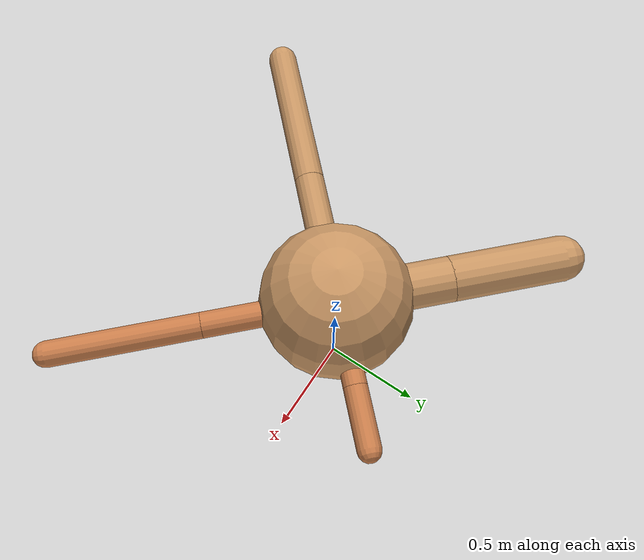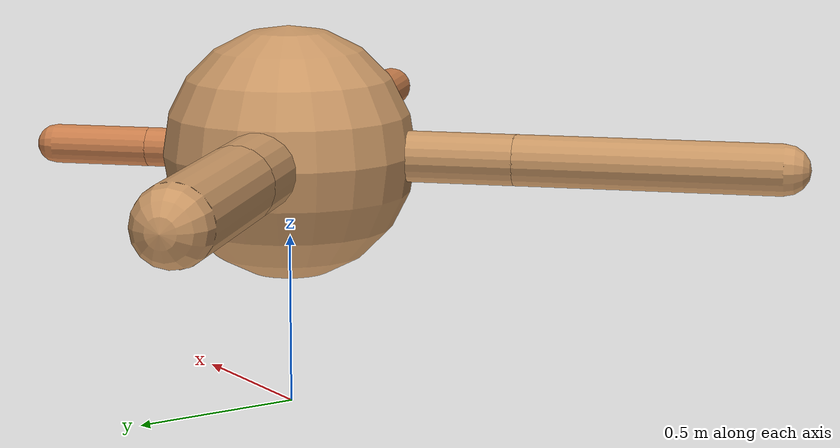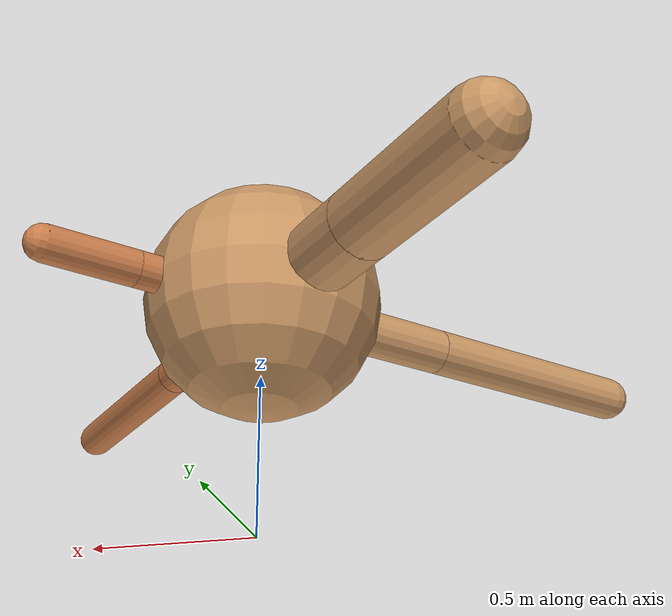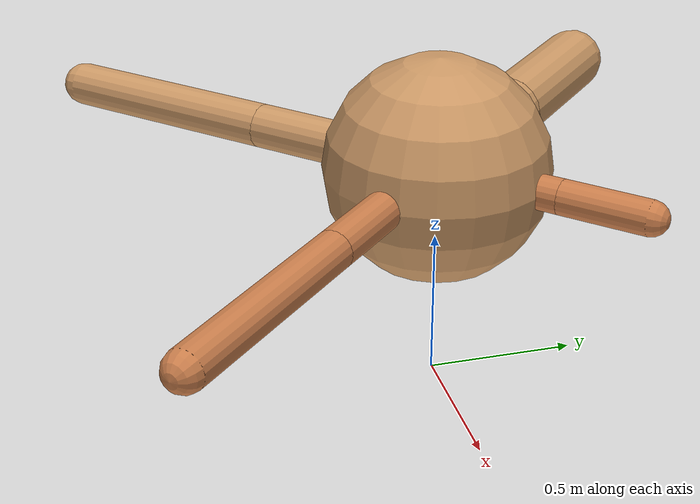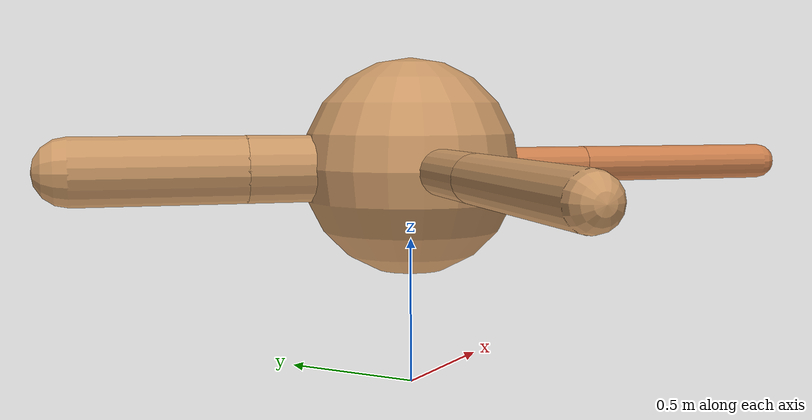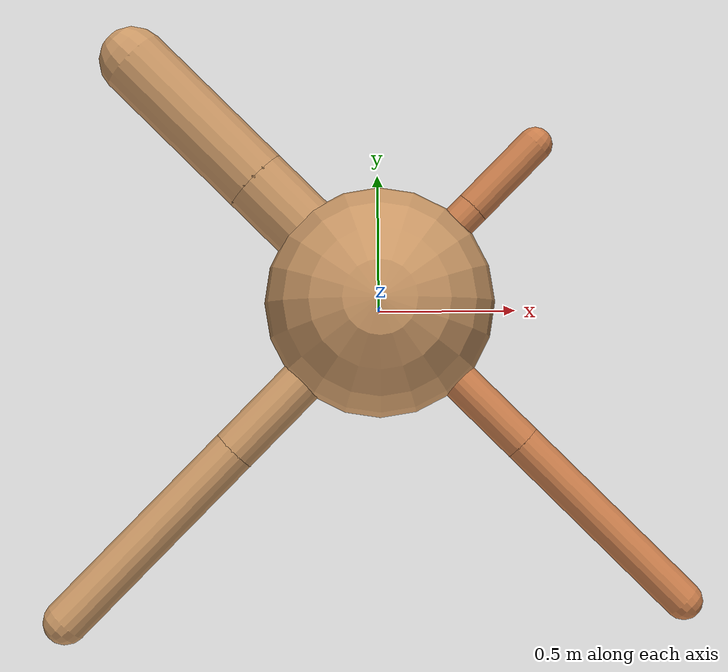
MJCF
<?xml version="1.0" ?>
<mujoco model="ant">

	<compiler angle="degree" coordinate="local" inertiafromgeom="true"/>

	<option integrator="RK4" timestep="0.01"/>

	<custom>

		<numeric data="0.0 0.0 0.55 1.0 0.0 0.0 0.0 0.0 1.0 0.0 -1.0 0.0 -1.0 0.0 1.0" name="init_qpos"/>

	</custom>

	<default>

		<joint armature="1" damping="1" limited="true"/>

		<geom conaffinity="0" condim="3" density="5.0" friction="1.5 0.1 0.1" margin="0.01" rgba="0.8 0.6 0.4 1"/>

	</default>

	<worldbody>

		<body name="torso" pos="0 0 0.75">

			<geom name="torso_geom" pos="0 0 0" size="0.37040242289374153" type="sphere"/>

			<!--joint armature="0" damping="0" limited="false" margin="0.01" name="root" pos="0 0 0" type="free"/-->

			<body name="front_left_leg" pos="0 0 0">

				<geom fromto="0 0 0 0.2 0.2 0" name="aux_1_geom" size="0.0569359641963525" type="capsule" rgba=".8 .5 .3 1"/>

				<body name="aux_1" pos="0.2 0.2 0">

					<joint axis="0 0 1" name="hip_1" pos="0.0 0.0 0.0" range="-40 40" type="hinge"/>

					<geom fromto="0 0 0 0.10152036955532658 0.10152036955532658 0" name="left_leg_geom" size="0.0569359641963525" type="capsule" rgba=".8 .5 .3 1"/>

					<body pos="0.10152036955532658 0.10152036955532658 0" name="front_left_foot">

						<joint axis="-1 1 0" name="ankle_1" pos="0.0 0.0 0.0" range="30 100" type="hinge"/>

						<geom fromto="0 0 0 0.20304073911065315 0.20304073911065315 0" name="left_ankle_geom" size="0.0569359641963525" type="capsule" rgba=".8 .5 .3 1"/>

					</body>

				</body>

			</body>

			<body name="front_right_leg" pos="0 0 0">

				<geom fromto="0 0 0 -0.2 0.2 0" name="aux_2_geom" size="0.11213543870527326" type="capsule"/>

				<body name="aux_2" pos="-0.2 0.2 0">

					<joint axis="0 0 1" name="hip_2" pos="0.0 0.0 0.0" range="-40 40" type="hinge"/>

					<geom fromto="0 0 0 -0.19541429426681564 0.19541429426681564 0" name="right_leg_geom" size="0.11213543870527326" type="capsule"/>

					<body pos="-0.19541429426681564 0.19541429426681564 0" name="front_right_foot">

						<joint axis="1 1 0" name="ankle_2" pos="0.0 0.0 0.0" range="-100 -30" type="hinge"/>

						<geom fromto="0 0 0 -0.3908285885336313 0.3908285885336313 0" name="right_ankle_geom" size="0.11213543870527326" type="capsule"/>

					</body>

				</body>

			</body>

			<body name="left_back_leg" pos="0 0 0">

				<geom fromto="0 0 0 -0.2 -0.2 0" name="aux_3_geom" size="0.07399525841851341" type="capsule"/>

				<body name="aux_3" pos="-0.2 -0.2 0">

					<joint axis="0 0 1" name="hip_3" pos="0.0 0.0 0.0" range="-40 40" type="hinge"/>

					<geom fromto="0 0 0 -0.27094881179246766 -0.27094881179246766 0" name="back_leg_geom" size="0.07399525841851341" type="capsule"/>

					<body pos="-0.27094881179246766 -0.27094881179246766 0" name="left_back_foot">

						<joint axis="-1 1 0" name="ankle_3" pos="0.0 0.0 0.0" range="-100 -30" type="hinge"/>

						<geom fromto="0 0 0 -0.5418976235849353 -0.5418976235849353 0" name="third_ankle_geom" size="0.07399525841851341" type="capsule"/>

					</body>

				</body>

			</body>

			<body name="right_back_leg" pos="0 0 0">

				<geom fromto="0 0 0 0.2 -0.2 0" name="aux_4_geom" size="0.06272807866202934" type="capsule" rgba=".8 .5 .3 1"/>

				<body name="aux_4" pos="0.2 -0.2 0">

					<joint axis="0 0 1" name="hip_4" pos="0.0 0.0 0.0" range="-40 40" type="hinge"/>

					<geom fromto="0 0 0 0.2539145408693208 -0.2539145408693208 0" name="rightback_leg_geom" size="0.06272807866202934" type="capsule" rgba=".8 .5 .3 1"/>

					<body pos="0.2539145408693208 -0.2539145408693208 0" name="right_back_foot">

						<joint axis="1 1 0" name="ankle_4" pos="0.0 0.0 0.0" range="30 100" type="hinge"/>

						<geom fromto="0 0 0 0.5078290817386416 -0.5078290817386416 0" name="fourth_ankle_geom" size="0.06272807866202934" type="capsule" rgba=".8 .5 .3 1"/>

					</body>

				</body>

			</body>

		</body>

	</worldbody>

	<actuator>

		<motor ctrllimited="true" ctrlrange="-1.0 1.0" joint="hip_4" gear="150"/>

		<motor ctrllimited="true" ctrlrange="-1.0 1.0" joint="ankle_4" gear="150"/>

		<motor ctrllimited="true" ctrlrange="-1.0 1.0" joint="hip_1" gear="150"/>

		<motor ctrllimited="true" ctrlrange="-1.0 1.0" joint="ankle_1" gear="150"/>

		<motor ctrllimited="true" ctrlrange="-1.0 1.0" joint="hip_2" gear="150"/>

		<motor ctrllimited="true" ctrlrange="-1.0 1.0" joint="ankle_2" gear="150"/>

		<motor ctrllimited="true" ctrlrange="-1.0 1.0" joint="hip_3" gear="150"/>

		<motor ctrllimited="true" ctrlrange="-1.0 1.0" joint="ankle_3" gear="150"/>

	</actuator>

</mujoco>
